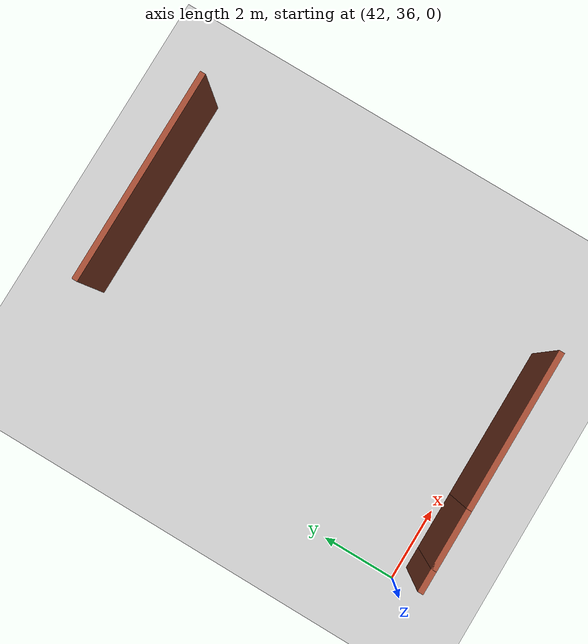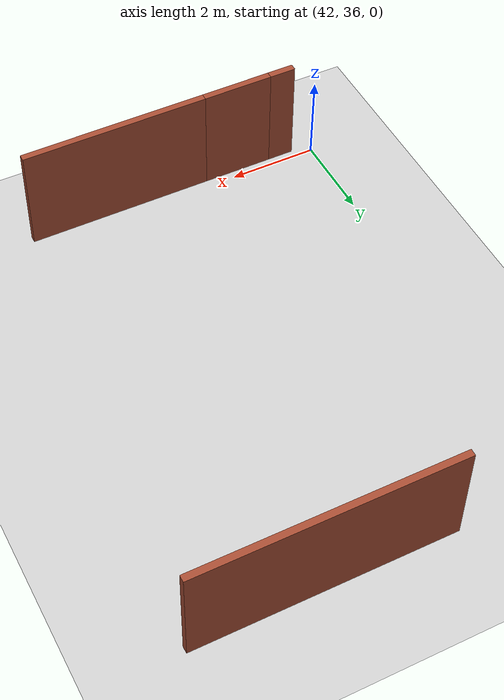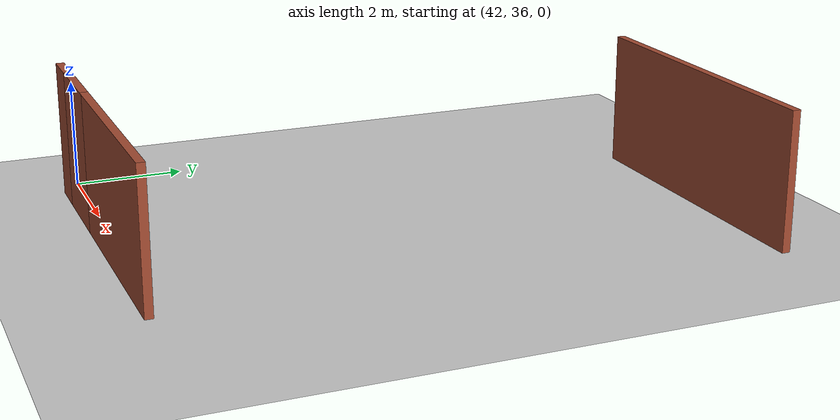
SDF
<sdf version="1.6">
 <world name="default">
  <model name="map_palace_v2_model_1">
   <pose>0 60 0 0 -0 0</pose>
   <link name="Wall_272">
    <collision name="Wall_272_Collision">
     <geometry><box><size>4.25 0.15 2.5</size></box></geometry>
     <pose>0 0 1.25 0 -0 0</pose>
    </collision>
    <visual name="Wall_272_Visual">
     <pose>0 0 1.25 0 -0 0</pose>
     <geometry><box><size>4.25 0.15 2.5</size></box></geometry>
     <material>
      <script><uri>file://media/materials/scripts/gazebo.material</uri><name>Gazebo/Bricks</name></script>
      <ambient>1 1 1 1</ambient>
     </material>
     <meta><layer>0</layer></meta>
    </visual>
    <pose>46.7523 -24.2485 0 0 -0 3.14159</pose>
   </link>
   <link name="Wall_273">
    <collision name="Wall_273_Collision">
     <geometry><box><size>1.75 0.15 2.5</size></box></geometry>
     <pose>0 0 1.25 0 -0 0</pose>
    </collision>
    <visual name="Wall_273_Visual">
     <pose>0 0 1.25 0 -0 0</pose>
     <geometry><box><size>1.75 0.15 2.5</size></box></geometry>
     <material>
      <script><uri>file://media/materials/scripts/gazebo.material</uri><name>Gazebo/Bricks</name></script>
      <ambient>1 1 1 1</ambient>
     </material>
     <meta><layer>0</layer></meta>
    </visual>
    <pose>43.9023 -24.2485 0 0 -0 3.14159</pose>
   </link>
   <link name="Wall_274">
    <collision name="Wall_274_Collision">
     <geometry><box><size>0.75 0.15 2.5</size></box></geometry>
     <pose>0 0 1.25 0 -0 0</pose>
    </collision>
    <visual name="Wall_274_Visual">
     <pose>0 0 1.25 0 -0 0</pose>
     <geometry><box><size>0.75 0.15 2.5</size></box></geometry>
     <material>
      <script><uri>file://media/materials/scripts/gazebo.material</uri><name>Gazebo/Bricks</name></script>
      <ambient>1 1 1 1</ambient>
     </material>
     <meta><layer>0</layer></meta>
    </visual>
    <pose>42.8023 -24.2485 0 0 -0 3.14159</pose>
   </link>
   <link name="Wall_308">
    <collision name="Wall_308_Collision">
     <geometry><box><size>5.75 0.15 2.5</size></box></geometry>
     <pose>0 0 1.25 0 -0 0</pose>
    </collision>
    <visual name="Wall_308_Visual">
     <pose>0 0 1.25 0 -0 0</pose>
     <geometry><box><size>5.75 0.15 2.5</size></box></geometry>
     <material>
      <script><uri>file://media/materials/scripts/gazebo.material</uri><name>Gazebo/Bricks</name></script>
      <ambient>1 1 1 1</ambient>
     </material>
     <meta><layer>0</layer></meta>
    </visual>
    <pose>47.3327 -13.6615 0 0 -0 3.14159</pose>
   </link>
   <static>1</static>
  </model>
  <model name="ground_plane">
   <static>1</static>
   <link name="link">
    <collision name="collision">
     <geometry><plane><normal>0 0 1</normal><size>100 100</size></plane></geometry>
     <surface>
      <contact><collide_bitmask>65535</collide_bitmask></contact>
      <friction><ode><mu>100</mu><mu2>50</mu2></ode></friction>
     </surface>
    </collision>
    <visual name="visual">
     <cast_shadows>0</cast_shadows>
     <geometry><plane><normal>0 0 1</normal><size>100 100</size></plane></geometry>
     <material>
      <script><uri>file://media/materials/scripts/gazebo.material</uri><name>Gazebo/Grey</name></script>
     </material>
    </visual>
   </link>
   <pose>9.31394 52.073 0 0 -0 0</pose>
  </model>
 </world>
</sdf>
